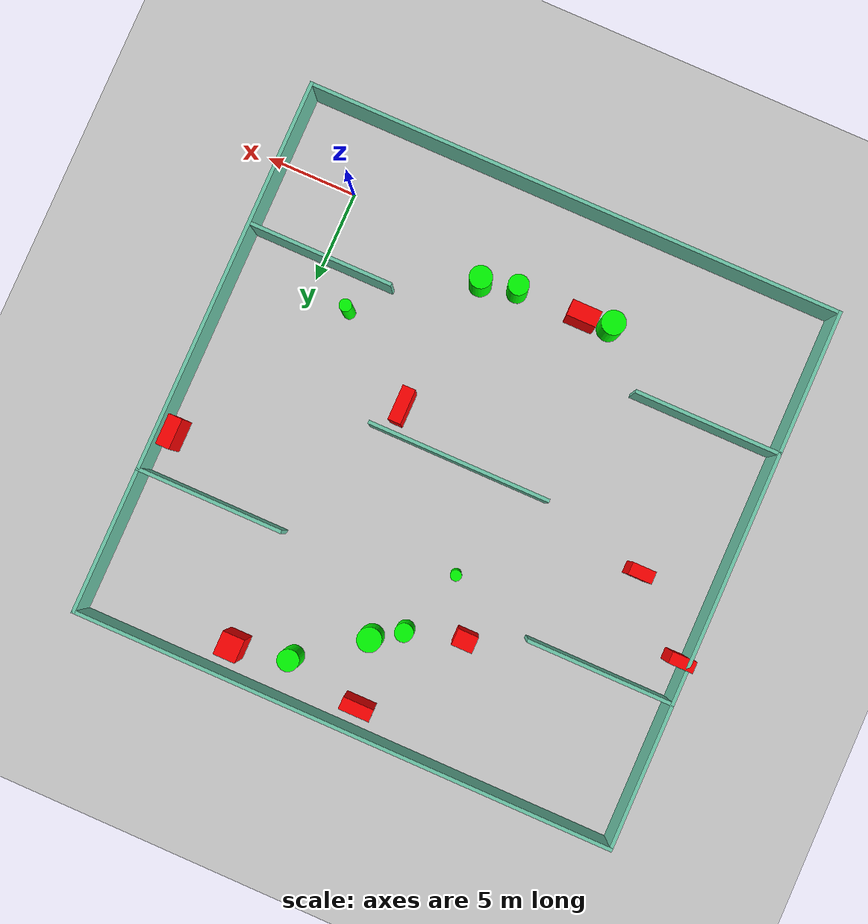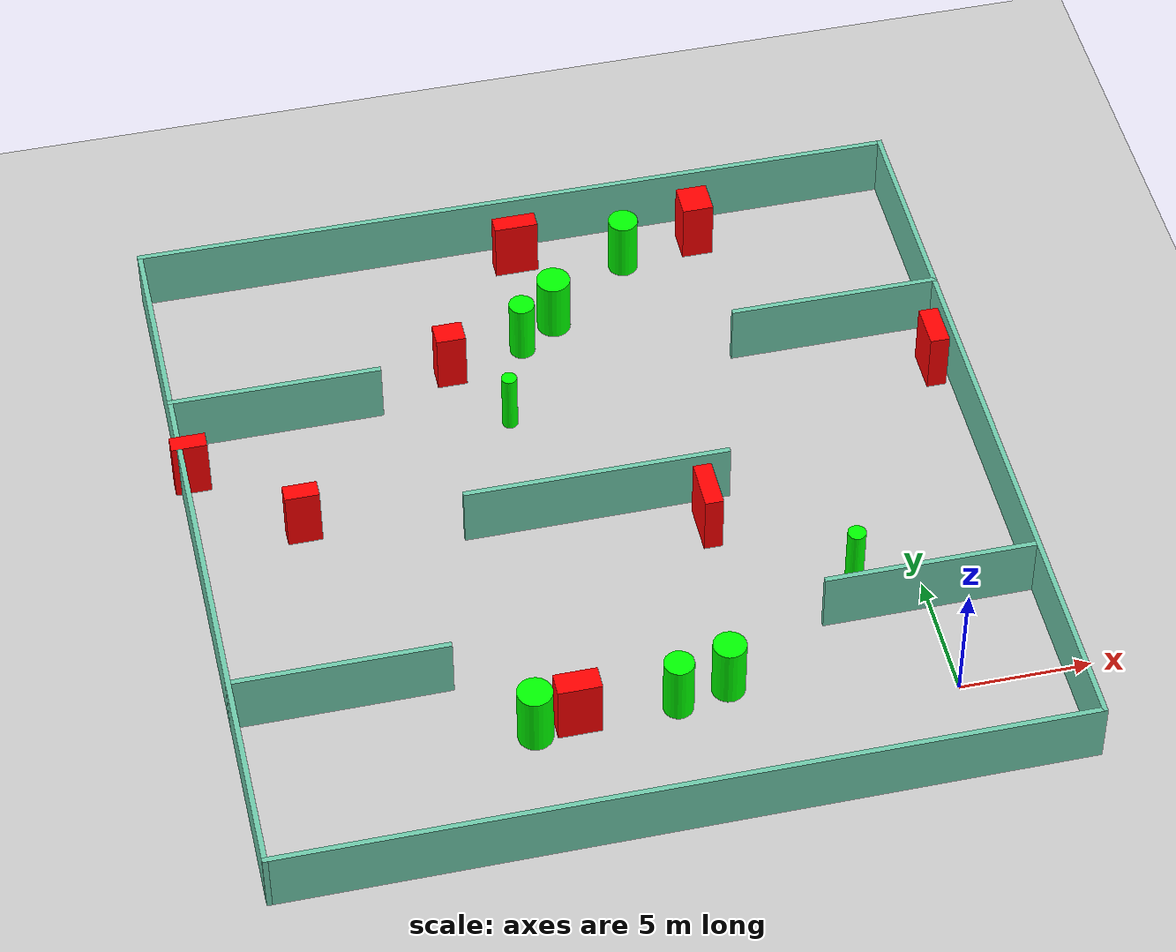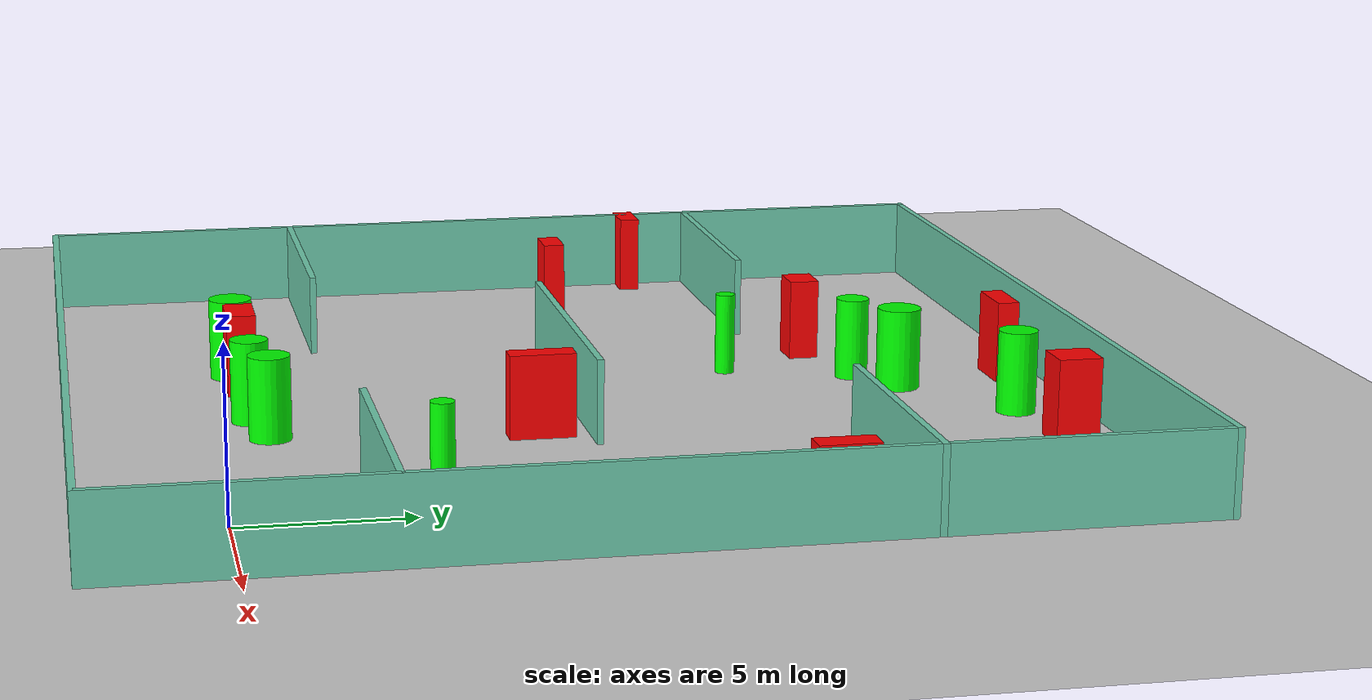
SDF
<sdf version="1.7">
 <world name="default">
  <light name="sun" type="directional">
   <pose>0 0 10 0 -0 0</pose>
   <diffuse>0.8 0.8 0.8 1</diffuse>
   <specular>0.2 0.2 0.2 1</specular>
   <attenuation>
    <range>1000</range>
    <constant>0.9</constant>
    <linear>0.01</linear>
    <quadratic>0.001</quadratic>
   </attenuation>
   <direction>-0.5 0.1 -0.9</direction>
   <spot><inner_angle>0</inner_angle><outer_angle>0</outer_angle><falloff>0</falloff></spot>
  </light>
  <model name="ground_plane">
   <static>1</static>
   <link name="link">
    <collision name="collision">
     <geometry><plane><normal>0 0 1</normal><size>100 100</size></plane></geometry>
     <surface>
      <contact><collide_bitmask>65535</collide_bitmask></contact>
      <friction><ode><mu>100</mu><mu2>50</mu2></ode></friction>
     </surface>
    </collision>
    <visual name="visual">
     <cast_shadows>0</cast_shadows>
     <geometry><plane><normal>0 0 1</normal><size>100 100</size></plane></geometry>
     <material>
      <script><uri>file://media/materials/scripts/gazebo.material</uri><name>Gazebo/Grey</name></script>
     </material>
    </visual>
   </link>
  </model>
  <gravity>0 0 -9.8</gravity>
  <magnetic_field>6e-06 2.3e-05 -4.2e-05</magnetic_field>
  <atmosphere type="adiabatic"/>
  <physics type="ode">
   <max_step_size>0.001</max_step_size>
   <real_time_factor>1</real_time_factor>
   <real_time_update_rate>1000</real_time_update_rate>
  </physics>
  <scene><ambient>0.4 0.4 0.4 1</ambient><background>0.7 0.7 0.7 1</background><shadows>1</shadows></scene>
  <spherical_coordinates>
   <surface_model>EARTH_WGS84</surface_model>
   <latitude_deg>0</latitude_deg>
   <longitude_deg>0</longitude_deg>
   <elevation>0</elevation>
   <heading_deg>0</heading_deg>
  </spherical_coordinates>
  <model name="my_base_walls">
   <link name="Wall_10">
    <collision name="Wall_10_Collision">
     <geometry><box><size>8.2 0.2 2.5</size></box></geometry>
     <pose>0 0 1.25 0 -0 0</pose>
    </collision>
    <visual name="Wall_10_Visual">
     <pose>0 0 1.25 0 -0 0</pose>
     <geometry><box><size>8.2 0.2 2.5</size></box></geometry>
     <material>
      <script><uri>file://media/materials/scripts/gazebo.material</uri><name>Gazebo/Grey</name></script>
      <ambient>0.435294 0.796078 0.67451 1</ambient>
     </material>
     <meta><layer>0</layer></meta>
    </visual>
    <pose>-11 -7 0 0 -0 0</pose>
   </link>
   <link name="Wall_12">
    <collision name="Wall_12_Collision">
     <geometry><box><size>8.2 0.2 2.5</size></box></geometry>
     <pose>0 0 1.25 0 -0 0</pose>
    </collision>
    <visual name="Wall_12_Visual">
     <pose>0 0 1.25 0 -0 0</pose>
     <geometry><box><size>8.2 0.2 2.5</size></box></geometry>
     <material>
      <script><uri>file://media/materials/scripts/gazebo.material</uri><name>Gazebo/Grey</name></script>
      <ambient>0.435294 0.796078 0.67451 1</ambient>
     </material>
     <meta><layer>0</layer></meta>
    </visual>
    <pose>-11 7 0 0 -0 0</pose>
   </link>
   <link name="Wall_14">
    <collision name="Wall_14_Collision">
     <geometry><box><size>8.2 0.2 2.5</size></box></geometry>
     <pose>0 0 1.25 0 -0 0</pose>
    </collision>
    <visual name="Wall_14_Visual">
     <pose>0 0 1.25 0 -0 0</pose>
     <geometry><box><size>8.2 0.2 2.5</size></box></geometry>
     <material>
      <script><uri>file://media/materials/scripts/gazebo.material</uri><name>Gazebo/Grey</name></script>
      <ambient>0.435294 0.796078 0.67451 1</ambient>
     </material>
     <meta><layer>0</layer></meta>
    </visual>
    <pose>11 7 0 0 -0 3.14159</pose>
   </link>
   <link name="Wall_16">
    <collision name="Wall_16_Collision">
     <geometry><box><size>10.2 0.2 2.5</size></box></geometry>
     <pose>0 0 1.25 0 -0 0</pose>
    </collision>
    <visual name="Wall_16_Visual">
     <pose>0 0 1.25 0 -0 0</pose>
     <geometry><box><size>10.2 0.2 2.5</size></box></geometry>
     <material>
      <script><uri>file://media/materials/scripts/gazebo.material</uri><name>Gazebo/Grey</name></script>
      <ambient>0.435294 0.796078 0.67451 1</ambient>
     </material>
     <meta><layer>0</layer></meta>
    </visual>
    <pose>0 0 0 0 -0 3.14159</pose>
   </link>
   <link name="Wall_2">
    <collision name="Wall_2_Collision">
     <geometry><box><size>30.2 0.2 2.5</size></box></geometry>
     <pose>0 0 1.25 0 -0 0</pose>
    </collision>
    <visual name="Wall_2_Visual">
     <pose>0 0 1.25 0 -0 0</pose>
     <geometry><box><size>30.2 0.2 2.5</size></box></geometry>
     <material>
      <script><uri>file://media/materials/scripts/gazebo.material</uri><name>Gazebo/Grey</name></script>
      <ambient>0.435294 0.796078 0.67451 1</ambient>
     </material>
     <meta><layer>0</layer></meta>
    </visual>
    <pose>0 -15 0 0 -0 3.14159</pose>
   </link>
   <link name="Wall_3">
    <collision name="Wall_3_Collision">
     <geometry><box><size>30.2 0.2 2.5</size></box></geometry>
     <pose>0 0 1.25 0 -0 0</pose>
    </collision>
    <visual name="Wall_3_Visual">
     <pose>0 0 1.25 0 -0 0</pose>
     <geometry><box><size>30.2 0.2 2.5</size></box></geometry>
     <material>
      <script><uri>file://media/materials/scripts/gazebo.material</uri><name>Gazebo/Grey</name></script>
      <ambient>0.435294 0.796078 0.67451 1</ambient>
     </material>
     <meta><layer>0</layer></meta>
    </visual>
    <pose>-15 0 0 0 -0 1.5708</pose>
   </link>
   <link name="Wall_4">
    <collision name="Wall_4_Collision">
     <geometry><box><size>30.2 0.2 2.5</size></box></geometry>
     <pose>0 0 1.25 0 -0 0</pose>
    </collision>
    <visual name="Wall_4_Visual">
     <pose>0 0 1.25 0 -0 0</pose>
     <geometry><box><size>30.2 0.2 2.5</size></box></geometry>
     <material>
      <script><uri>file://media/materials/scripts/gazebo.material</uri><name>Gazebo/Grey</name></script>
      <ambient>0.435294 0.796078 0.67451 1</ambient>
     </material>
     <meta><layer>0</layer></meta>
    </visual>
    <pose>0 15 0 0 -0 0</pose>
   </link>
   <link name="Wall_6">
    <collision name="Wall_6_Collision">
     <geometry><box><size>30.2 0.2 2.5</size></box></geometry>
     <pose>0 0 1.25 0 -0 0</pose>
    </collision>
    <visual name="Wall_6_Visual">
     <pose>0 0 1.25 0 -0 0</pose>
     <geometry><box><size>30.2 0.2 2.5</size></box></geometry>
     <material>
      <script><uri>file://media/materials/scripts/gazebo.material</uri><name>Gazebo/Grey</name></script>
      <ambient>0.435294 0.796078 0.67451 1</ambient>
     </material>
     <meta><layer>0</layer></meta>
    </visual>
    <pose>15 0 0 0 -0 1.5708</pose>
   </link>
   <link name="Wall_8">
    <collision name="Wall_8_Collision">
     <geometry><box><size>8.2 0.2 2.5</size></box></geometry>
     <pose>0 0 1.25 0 -0 0</pose>
    </collision>
    <visual name="Wall_8_Visual">
     <pose>0 0 1.25 0 -0 0</pose>
     <geometry><box><size>8.2 0.2 2.5</size></box></geometry>
     <material>
      <script><uri>file://media/materials/scripts/gazebo.material</uri><name>Gazebo/Grey</name></script>
      <ambient>0.435294 0.796078 0.67451 1</ambient>
     </material>
     <meta><layer>0</layer></meta>
    </visual>
    <pose>11 -7 0 0 -0 3.14159</pose>
   </link>
   <static>1</static>
   <pose>-11 11 0 0 -0 0</pose>
  </model>
  <model name="cylinder1">
   <static>1</static>
   <link name="link">
    <inertial>
     <mass>1</mass>
     <inertia><ixx>0.5</ixx><ixy>0</ixy><ixz>0</ixz><iyy>0.5</iyy><iyz>0</iyz><izz>1</izz></inertia>
    </inertial>
    <collision name="collision">
     <geometry><cylinder><radius>0.6222279075986699</radius><length>2.5</length></cylinder></geometry>
    </collision>
    <visual name="visual">
     <geometry><cylinder><radius>0.6222279075986699</radius><length>2.5</length></cylinder></geometry>
     <material>
      <ambient>0 1 0 1</ambient>
      <diffuse>0 1 0 1</diffuse>
      <specular>0.1 0.1 0.1 1</specular>
      <emissive>0 0 0 0</emissive>
     </material>
    </visual>
   </link>
   <pose>-8.197134238105384 1.7707142024010327 1.25 0 0 0</pose>
  </model>
  <model name="cylinder2">
   <static>1</static>
   <link name="link">
    <inertial>
     <mass>1</mass>
     <inertia><ixx>0.5</ixx><ixy>0</ixy><ixz>0</ixz><iyy>0.5</iyy><iyz>0</iyz><izz>1</izz></inertia>
    </inertial>
    <collision name="collision">
     <geometry><cylinder><radius>0.5850495752111935</radius><length>2.5</length></cylinder></geometry>
    </collision>
    <visual name="visual">
     <geometry><cylinder><radius>0.5850495752111935</radius><length>2.5</length></cylinder></geometry>
     <material>
      <ambient>0 1 0 1</ambient>
      <diffuse>0 1 0 1</diffuse>
      <specular>0.1 0.1 0.1 1</specular>
      <emissive>0 0 0 0</emissive>
     </material>
    </visual>
   </link>
   <pose>-7.089239005429253 23.85769576172674 1.25 0 0 0</pose>
  </model>
  <model name="cylinder3">
   <static>1</static>
   <link name="link">
    <inertial>
     <mass>1</mass>
     <inertia><ixx>0.5</ixx><ixy>0</ixy><ixz>0</ixz><iyy>0.5</iyy><iyz>0</iyz><izz>1</izz></inertia>
    </inertial>
    <collision name="collision">
     <geometry><cylinder><radius>0.3002713292156778</radius><length>2.5</length></cylinder></geometry>
    </collision>
    <visual name="visual">
     <geometry><cylinder><radius>0.3002713292156778</radius><length>2.5</length></cylinder></geometry>
     <material>
      <ambient>0 1 0 1</ambient>
      <diffuse>0 1 0 1</diffuse>
      <specular>0.1 0.1 0.1 1</specular>
      <emissive>0 0 0 0</emissive>
     </material>
    </visual>
   </link>
   <pose>-13.224572655829967 16.430644862498163 1.25 0 0 0</pose>
  </model>
  <model name="cylinder4">
   <static>1</static>
   <link name="link">
    <inertial>
     <mass>1</mass>
     <inertia><ixx>0.5</ixx><ixy>0</ixy><ixz>0</ixz><iyy>0.5</iyy><iyz>0</iyz><izz>1</izz></inertia>
    </inertial>
    <collision name="collision">
     <geometry><cylinder><radius>0.34711574642408904</radius><length>2.5</length></cylinder></geometry>
    </collision>
    <visual name="visual">
     <geometry><cylinder><radius>0.34711574642408904</radius><length>2.5</length></cylinder></geometry>
     <material>
      <ambient>0 1 0 1</ambient>
      <diffuse>0 1 0 1</diffuse>
      <specular>0.1 0.1 0.1 1</specular>
      <emissive>0 0 0 0</emissive>
     </material>
    </visual>
   </link>
   <pose>-2.3613242350339227 5.946465702533043 1.25 0 0 0</pose>
  </model>
  <model name="cylinder5">
   <static>1</static>
   <link name="link">
    <inertial>
     <mass>1</mass>
     <inertia><ixx>0.5</ixx><ixy>0</ixy><ixz>0</ixz><iyy>0.5</iyy><iyz>0</iyz><izz>1</izz></inertia>
    </inertial>
    <collision name="collision">
     <geometry><cylinder><radius>0.5009175814668742</radius><length>2.5</length></cylinder></geometry>
    </collision>
    <visual name="visual">
     <geometry><cylinder><radius>0.5009175814668742</radius><length>2.5</length></cylinder></geometry>
     <material>
      <ambient>0 1 0 1</ambient>
      <diffuse>0 1 0 1</diffuse>
      <specular>0.1 0.1 0.1 1</specular>
      <emissive>0 0 0 0</emissive>
     </material>
    </visual>
   </link>
   <pose>-11.953859688984483 20.17828040744051 1.25 0 0 0</pose>
  </model>
  <model name="cylinder6">
   <static>1</static>
   <link name="link">
    <inertial>
     <mass>1</mass>
     <inertia><ixx>0.5</ixx><ixy>0</ixy><ixz>0</ixz><iyy>0.5</iyy><iyz>0</iyz><izz>1</izz></inertia>
    </inertial>
    <collision name="collision">
     <geometry><cylinder><radius>0.660918298679168</radius><length>2.5</length></cylinder></geometry>
    </collision>
    <visual name="visual">
     <geometry><cylinder><radius>0.660918298679168</radius><length>2.5</length></cylinder></geometry>
     <material>
      <ambient>0 1 0 1</ambient>
      <diffuse>0 1 0 1</diffuse>
      <specular>0.1 0.1 0.1 1</specular>
      <emissive>0 0 0 0</emissive>
     </material>
    </visual>
   </link>
   <pose>-10.473275622023504 21.227463137552473 1.25 0 0 0</pose>
  </model>
  <model name="cylinder7">
   <static>1</static>
   <link name="link">
    <inertial>
     <mass>1</mass>
     <inertia><ixx>0.5</ixx><ixy>0</ixy><ixz>0</ixz><iyy>0.5</iyy><iyz>0</iyz><izz>1</izz></inertia>
    </inertial>
    <collision name="collision">
     <geometry><cylinder><radius>0.6626927384045551</radius><length>2.5</length></cylinder></geometry>
    </collision>
    <visual name="visual">
     <geometry><cylinder><radius>0.6626927384045551</radius><length>2.5</length></cylinder></geometry>
     <material>
      <ambient>0 1 0 1</ambient>
      <diffuse>0 1 0 1</diffuse>
      <specular>0.1 0.1 0.1 1</specular>
      <emissive>0 0 0 0</emissive>
     </material>
    </visual>
   </link>
   <pose>-15.459896855776435 1.1878695615821862 1.25 0 0 0</pose>
  </model>
  <model name="cylinder8">
   <static>1</static>
   <link name="link">
    <inertial>
     <mass>1</mass>
     <inertia><ixx>0.5</ixx><ixy>0</ixy><ixz>0</ixz><iyy>0.5</iyy><iyz>0</iyz><izz>1</izz></inertia>
    </inertial>
    <collision name="collision">
     <geometry><cylinder><radius>0.5647724910051171</radius><length>2.5</length></cylinder></geometry>
    </collision>
    <visual name="visual">
     <geometry><cylinder><radius>0.5647724910051171</radius><length>2.5</length></cylinder></geometry>
     <material>
      <ambient>0 1 0 1</ambient>
      <diffuse>0 1 0 1</diffuse>
      <specular>0.1 0.1 0.1 1</specular>
      <emissive>0 0 0 0</emissive>
     </material>
    </visual>
   </link>
   <pose>-10.161310029144563 1.3543033777082867 1.25 0 0 0</pose>
  </model>
  <model name="box1">
   <static>1</static>
   <link name="link">
    <inertial>
     <mass>1</mass>
     <inertia><ixx>0.083</ixx><ixy>0</ixy><ixz>0</ixz><iyy>0.083</iyy><iyz>0</iyz><izz>0.083</izz></inertia>
    </inertial>
    <collision name="collision">
     <geometry><box><size>0.7607422197862261 1.7081774912569694 2.5</size></box></geometry>
    </collision>
    <visual name="visual">
     <geometry><box><size>0.7607422197862261 1.7081774912569694 2.5</size></box></geometry>
     <material>
      <ambient>1 0 0 1</ambient>
      <diffuse>1 0 0 1</diffuse>
      <specular>0.1 0.1 0.1 1</specular>
      <emissive>0 0 0 0</emissive>
     </material>
    </visual>
    <sensor name="my_contact" type="contact">
     <contact><collision>box_collision</collision><topic>__default_topic__</topic></contact>
    </sensor>
   </link>
   <pose>3.3286667685588327 15.59629016717771 1.25 0 0 0</pose>
  </model>
  <model name="box2">
   <static>1</static>
   <link name="link">
    <inertial>
     <mass>1</mass>
     <inertia><ixx>0.083</ixx><ixy>0</ixy><ixz>0</ixz><iyy>0.083</iyy><iyz>0</iyz><izz>0.083</izz></inertia>
    </inertial>
    <collision name="collision">
     <geometry><box><size>1.6460229995591567 0.8946954792646293 2.5</size></box></geometry>
    </collision>
    <visual name="visual">
     <geometry><box><size>1.6460229995591567 0.8946954792646293 2.5</size></box></geometry>
     <material>
      <ambient>1 0 0 1</ambient>
      <diffuse>1 0 0 1</diffuse>
      <specular>0.1 0.1 0.1 1</specular>
      <emissive>0 0 0 0</emissive>
     </material>
    </visual>
    <sensor name="my_contact" type="contact">
     <contact><collision>box_collision</collision><topic>__default_topic__</topic></contact>
    </sensor>
   </link>
   <pose>-13.874728887453832 1.34472225950155 1.25 0 0 0</pose>
  </model>
  <model name="box3">
   <static>1</static>
   <link name="link">
    <inertial>
     <mass>1</mass>
     <inertia><ixx>0.083</ixx><ixy>0</ixy><ixz>0</ixz><iyy>0.083</iyy><iyz>0</iyz><izz>0.083</izz></inertia>
    </inertial>
    <collision name="collision">
     <geometry><box><size>1.3132491755015505 0.681512333049087 2.5</size></box></geometry>
    </collision>
    <visual name="visual">
     <geometry><box><size>1.3132491755015505 0.681512333049087 2.5</size></box></geometry>
     <material>
      <ambient>1 0 0 1</ambient>
      <diffuse>1 0 0 1</diffuse>
      <specular>0.1 0.1 0.1 1</specular>
      <emissive>0 0 0 0</emissive>
     </material>
    </visual>
    <sensor name="my_contact" type="contact">
     <contact><collision>box_collision</collision><topic>__default_topic__</topic></contact>
    </sensor>
   </link>
   <pose>-21.93672038398103 12.476612650875666 1.25 0 0 0</pose>
  </model>
  <model name="box4">
   <static>1</static>
   <link name="link">
    <inertial>
     <mass>1</mass>
     <inertia><ixx>0.083</ixx><ixy>0</ixy><ixz>0</ixz><iyy>0.083</iyy><iyz>0</iyz><izz>0.083</izz></inertia>
    </inertial>
    <collision name="collision">
     <geometry><box><size>1.2205085127624884 1.2936233692216992 2.5</size></box></geometry>
    </collision>
    <visual name="visual">
     <geometry><box><size>1.2205085127624884 1.2936233692216992 2.5</size></box></geometry>
     <material>
      <ambient>1 0 0 1</ambient>
      <diffuse>1 0 0 1</diffuse>
      <specular>0.1 0.1 0.1 1</specular>
      <emissive>0 0 0 0</emissive>
     </material>
    </visual>
    <sensor name="my_contact" type="contact">
     <contact><collision>box_collision</collision><topic>__default_topic__</topic></contact>
    </sensor>
   </link>
   <pose>-4.0371894241058826 24.451794197247633 1.25 0 0 0</pose>
  </model>
  <model name="box5">
   <static>1</static>
   <link name="link">
    <inertial>
     <mass>1</mass>
     <inertia><ixx>0.083</ixx><ixy>0</ixy><ixz>0</ixz><iyy>0.083</iyy><iyz>0</iyz><izz>0.083</izz></inertia>
    </inertial>
    <collision name="collision">
     <geometry><box><size>1.7039379073639715 0.67686970892135 2.5</size></box></geometry>
    </collision>
    <visual name="visual">
     <geometry><box><size>1.7039379073639715 0.67686970892135 2.5</size></box></geometry>
     <material>
      <ambient>1 0 0 1</ambient>
      <diffuse>1 0 0 1</diffuse>
      <specular>0.1 0.1 0.1 1</specular>
      <emissive>0 0 0 0</emissive>
     </material>
    </visual>
    <sensor name="my_contact" type="contact">
     <contact><collision>box_collision</collision><topic>__default_topic__</topic></contact>
    </sensor>
   </link>
   <pose>-11.28533657861692 24.72923636726427 1.25 0 0 0</pose>
  </model>
  <model name="box6">
   <static>1</static>
   <link name="link">
    <inertial>
     <mass>1</mass>
     <inertia><ixx>0.083</ixx><ixy>0</ixy><ixz>0</ixz><iyy>0.083</iyy><iyz>0</iyz><izz>0.083</izz></inertia>
    </inertial>
    <collision name="collision">
     <geometry><box><size>1.1469524277194854 0.9110889173510364 2.5</size></box></geometry>
    </collision>
    <visual name="visual">
     <geometry><box><size>1.1469524277194854 0.9110889173510364 2.5</size></box></geometry>
     <material>
      <ambient>1 0 0 1</ambient>
      <diffuse>1 0 0 1</diffuse>
      <specular>0.1 0.1 0.1 1</specular>
      <emissive>0 0 0 0</emissive>
     </material>
    </visual>
    <sensor name="my_contact" type="contact">
     <contact><collision>box_collision</collision><topic>__default_topic__</topic></contact>
    </sensor>
   </link>
   <pose>-14.995083137797565 19.312769065591716 1.25 0 0 0</pose>
  </model>
  <model name="box7">
   <static>1</static>
   <link name="link">
    <inertial>
     <mass>1</mass>
     <inertia><ixx>0.083</ixx><ixy>0</ixy><ixz>0</ixz><iyy>0.083</iyy><iyz>0</iyz><izz>0.083</izz></inertia>
    </inertial>
    <collision name="collision">
     <geometry><box><size>0.7102305150581867 1.9489829410657533 2.5</size></box></geometry>
    </collision>
    <visual name="visual">
     <geometry><box><size>0.7102305150581867 1.9489829410657533 2.5</size></box></geometry>
     <material>
      <ambient>1 0 0 1</ambient>
      <diffuse>1 0 0 1</diffuse>
      <specular>0.1 0.1 0.1 1</specular>
      <emissive>0 0 0 0</emissive>
     </material>
    </visual>
    <sensor name="my_contact" type="contact">
     <contact><collision>box_collision</collision><topic>__default_topic__</topic></contact>
    </sensor>
   </link>
   <pose>-7.1109051548420545 9.495694933624234 1.25 0 0 0</pose>
  </model>
  <model name="box8">
   <static>1</static>
   <link name="link">
    <inertial>
     <mass>1</mass>
     <inertia><ixx>0.083</ixx><ixy>0</ixy><ixz>0</ixz><iyy>0.083</iyy><iyz>0</iyz><izz>0.083</izz></inertia>
    </inertial>
    <collision name="collision">
     <geometry><box><size>1.3634492258297866 0.6442046471397871 2.5</size></box></geometry>
    </collision>
    <visual name="visual">
     <geometry><box><size>1.3634492258297866 0.6442046471397871 2.5</size></box></geometry>
     <material>
      <ambient>1 0 0 1</ambient>
      <diffuse>1 0 0 1</diffuse>
      <specular>0.1 0.1 0.1 1</specular>
      <emissive>0 0 0 0</emissive>
     </material>
    </visual>
    <sensor name="my_contact" type="contact">
     <contact><collision>box_collision</collision><topic>__default_topic__</topic></contact>
    </sensor>
   </link>
   <pose>-25.6377764241232 15.840196730775432 1.25 0 0 0</pose>
  </model>
 </world>
</sdf>
